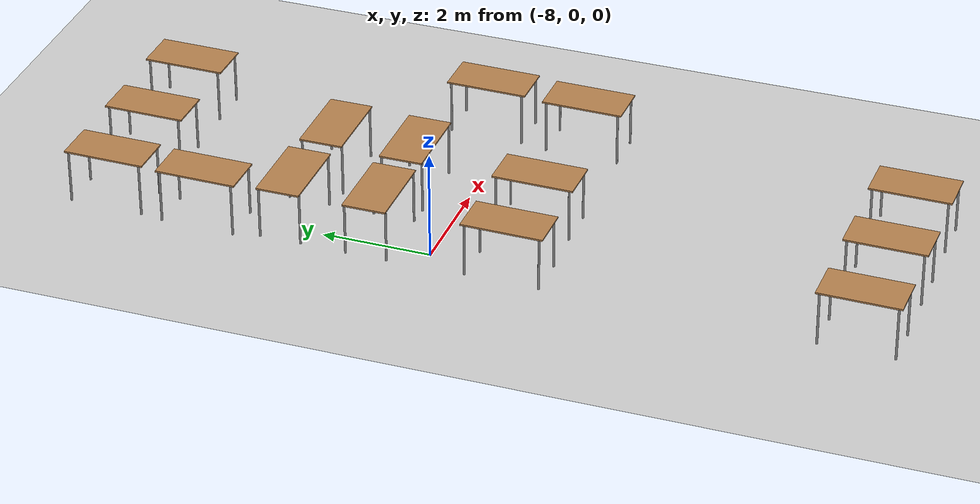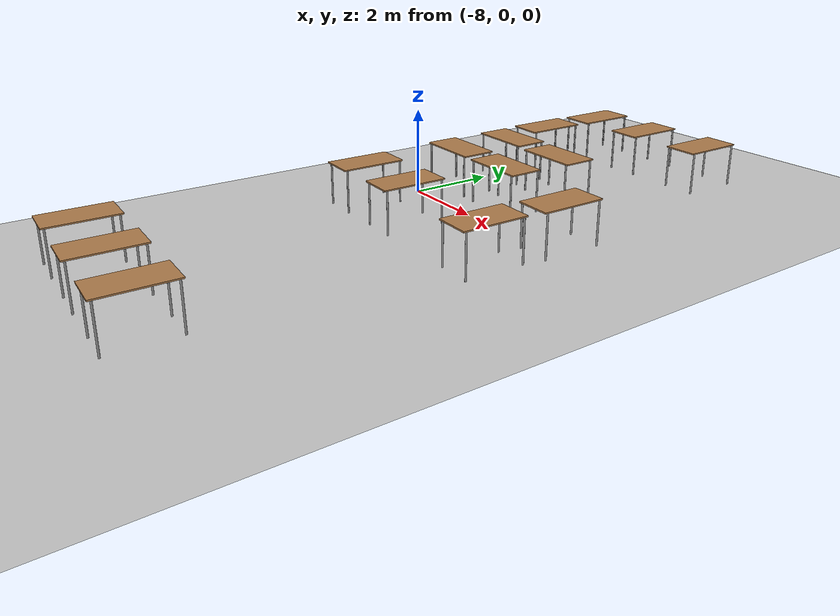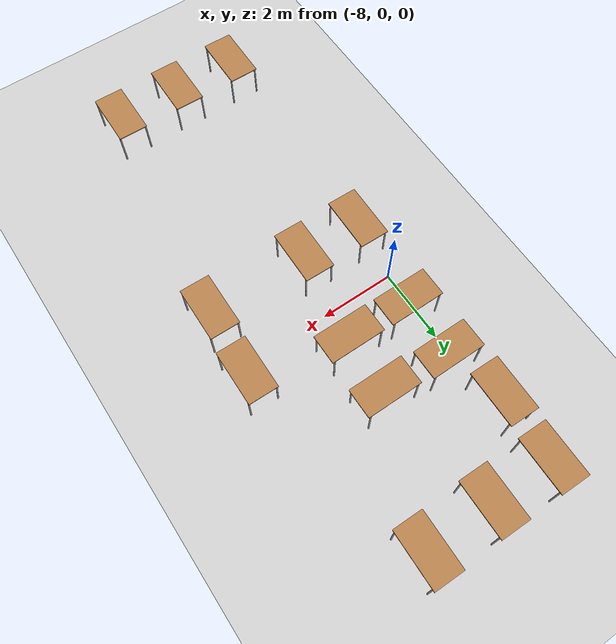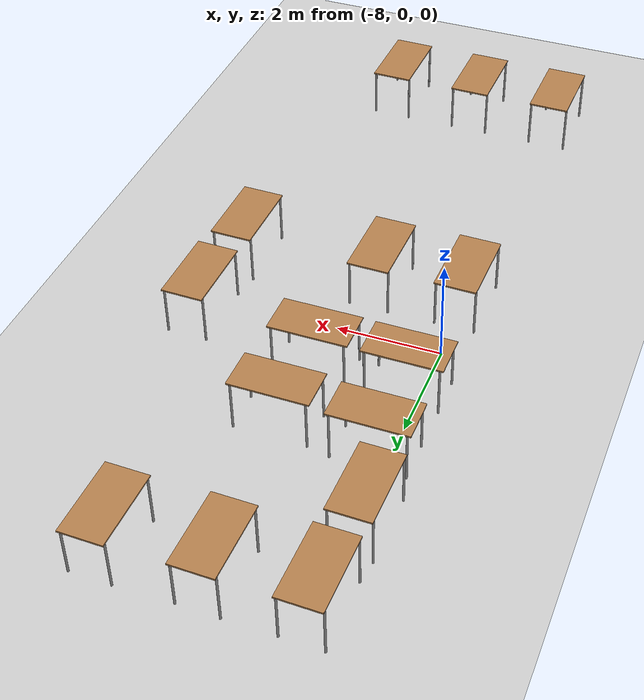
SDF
<sdf version="1.7">
 <world name="default">
  <model name="ground_plane">
   <static>1</static>
   <link name="link">
    <collision name="collision">
     <geometry><plane><normal>0 0 1</normal><size>100 100</size></plane></geometry>
     <surface><friction><ode><mu>100</mu><mu2>50</mu2></ode></friction></surface>
    </collision>
    <visual name="visual">
     <cast_shadows>0</cast_shadows>
     <geometry><plane><normal>0 0 1</normal><size>100 100</size></plane></geometry>
     <material>
      <script><uri>file://media/materials/scripts/gazebo.material</uri><name>Gazebo/Grey</name></script>
     </material>
    </visual>
   </link>
  </model>
  <model name="table_clone_clone">
   <static>1</static>
   <link name="link">
    <collision name="surface">
     <pose>0 0 1 0 -0 0</pose>
     <geometry><box><size>1.5 0.8 0.03</size></box></geometry>
     <surface><friction><ode><mu>0.6</mu><mu2>0.6</mu2></ode></friction></surface>
    </collision>
    <visual name="visual1">
     <pose>0 0 1 0 -0 0</pose>
     <geometry><box><size>1.5 0.8 0.03</size></box></geometry>
     <material>
      <script><uri>file://media/materials/scripts/gazebo.material</uri><name>Gazebo/Wood</name></script>
     </material>
    </visual>
    <collision name="front_left_leg">
     <pose>0.68 0.38 0.5 0 -0 0</pose>
     <geometry><cylinder><radius>0.02</radius><length>1</length></cylinder></geometry>
    </collision>
    <visual name="front_left_leg">
     <pose>0.68 0.38 0.5 0 -0 0</pose>
     <geometry><cylinder><radius>0.02</radius><length>1</length></cylinder></geometry>
     <material>
      <script><uri>file://media/materials/scripts/gazebo.material</uri><name>Gazebo/Grey</name></script>
     </material>
    </visual>
    <collision name="front_right_leg">
     <pose>0.68 -0.38 0.5 0 -0 0</pose>
     <geometry><cylinder><radius>0.02</radius><length>1</length></cylinder></geometry>
    </collision>
    <visual name="front_right_leg">
     <pose>0.68 -0.38 0.5 0 -0 0</pose>
     <geometry><cylinder><radius>0.02</radius><length>1</length></cylinder></geometry>
     <material>
      <script><uri>file://media/materials/scripts/gazebo.material</uri><name>Gazebo/Grey</name></script>
     </material>
    </visual>
    <collision name="back_right_leg">
     <pose>-0.68 -0.38 0.5 0 -0 0</pose>
     <geometry><cylinder><radius>0.02</radius><length>1</length></cylinder></geometry>
    </collision>
    <visual name="back_right_leg">
     <pose>-0.68 -0.38 0.5 0 -0 0</pose>
     <geometry><cylinder><radius>0.02</radius><length>1</length></cylinder></geometry>
     <material>
      <script><uri>file://media/materials/scripts/gazebo.material</uri><name>Gazebo/Grey</name></script>
     </material>
    </visual>
    <collision name="back_left_leg">
     <pose>-0.68 0.38 0.5 0 -0 0</pose>
     <geometry><cylinder><radius>0.02</radius><length>1</length></cylinder></geometry>
    </collision>
    <visual name="back_left_leg">
     <pose>-0.68 0.38 0.5 0 -0 0</pose>
     <geometry><cylinder><radius>0.02</radius><length>1</length></cylinder></geometry>
     <material>
      <script><uri>file://media/materials/scripts/gazebo.material</uri><name>Gazebo/Grey</name></script>
     </material>
    </visual>
   </link>
   <pose>-8.05663 -7.7168 0 0 0 -1.58514</pose>
  </model>
  <model name="table_clone_clone_0">
   <static>1</static>
   <link name="link">
    <collision name="surface">
     <pose>0 0 1 0 -0 0</pose>
     <geometry><box><size>1.5 0.8 0.03</size></box></geometry>
     <surface><friction><ode><mu>0.6</mu><mu2>0.6</mu2></ode></friction></surface>
    </collision>
    <visual name="visual1">
     <pose>0 0 1 0 -0 0</pose>
     <geometry><box><size>1.5 0.8 0.03</size></box></geometry>
     <material>
      <script><uri>file://media/materials/scripts/gazebo.material</uri><name>Gazebo/Wood</name></script>
     </material>
    </visual>
    <collision name="front_left_leg">
     <pose>0.68 0.38 0.5 0 -0 0</pose>
     <geometry><cylinder><radius>0.02</radius><length>1</length></cylinder></geometry>
    </collision>
    <visual name="front_left_leg">
     <pose>0.68 0.38 0.5 0 -0 0</pose>
     <geometry><cylinder><radius>0.02</radius><length>1</length></cylinder></geometry>
     <material>
      <script><uri>file://media/materials/scripts/gazebo.material</uri><name>Gazebo/Grey</name></script>
     </material>
    </visual>
    <collision name="front_right_leg">
     <pose>0.68 -0.38 0.5 0 -0 0</pose>
     <geometry><cylinder><radius>0.02</radius><length>1</length></cylinder></geometry>
    </collision>
    <visual name="front_right_leg">
     <pose>0.68 -0.38 0.5 0 -0 0</pose>
     <geometry><cylinder><radius>0.02</radius><length>1</length></cylinder></geometry>
     <material>
      <script><uri>file://media/materials/scripts/gazebo.material</uri><name>Gazebo/Grey</name></script>
     </material>
    </visual>
    <collision name="back_right_leg">
     <pose>-0.68 -0.38 0.5 0 -0 0</pose>
     <geometry><cylinder><radius>0.02</radius><length>1</length></cylinder></geometry>
    </collision>
    <visual name="back_right_leg">
     <pose>-0.68 -0.38 0.5 0 -0 0</pose>
     <geometry><cylinder><radius>0.02</radius><length>1</length></cylinder></geometry>
     <material>
      <script><uri>file://media/materials/scripts/gazebo.material</uri><name>Gazebo/Grey</name></script>
     </material>
    </visual>
    <collision name="back_left_leg">
     <pose>-0.68 0.38 0.5 0 -0 0</pose>
     <geometry><cylinder><radius>0.02</radius><length>1</length></cylinder></geometry>
    </collision>
    <visual name="back_left_leg">
     <pose>-0.68 0.38 0.5 0 -0 0</pose>
     <geometry><cylinder><radius>0.02</radius><length>1</length></cylinder></geometry>
     <material>
      <script><uri>file://media/materials/scripts/gazebo.material</uri><name>Gazebo/Grey</name></script>
     </material>
    </visual>
   </link>
   <pose>-6.31965 -7.72548 0 0 0 -1.58514</pose>
  </model>
  <model name="table_clone_clone_1">
   <static>1</static>
   <link name="link">
    <collision name="surface">
     <pose>0 0 1 0 -0 0</pose>
     <geometry><box><size>1.5 0.8 0.03</size></box></geometry>
     <surface><friction><ode><mu>0.6</mu><mu2>0.6</mu2></ode></friction></surface>
    </collision>
    <visual name="visual1">
     <pose>0 0 1 0 -0 0</pose>
     <geometry><box><size>1.5 0.8 0.03</size></box></geometry>
     <material>
      <script><uri>file://media/materials/scripts/gazebo.material</uri><name>Gazebo/Wood</name></script>
     </material>
    </visual>
    <collision name="front_left_leg">
     <pose>0.68 0.38 0.5 0 -0 0</pose>
     <geometry><cylinder><radius>0.02</radius><length>1</length></cylinder></geometry>
    </collision>
    <visual name="front_left_leg">
     <pose>0.68 0.38 0.5 0 -0 0</pose>
     <geometry><cylinder><radius>0.02</radius><length>1</length></cylinder></geometry>
     <material>
      <script><uri>file://media/materials/scripts/gazebo.material</uri><name>Gazebo/Grey</name></script>
     </material>
    </visual>
    <collision name="front_right_leg">
     <pose>0.68 -0.38 0.5 0 -0 0</pose>
     <geometry><cylinder><radius>0.02</radius><length>1</length></cylinder></geometry>
    </collision>
    <visual name="front_right_leg">
     <pose>0.68 -0.38 0.5 0 -0 0</pose>
     <geometry><cylinder><radius>0.02</radius><length>1</length></cylinder></geometry>
     <material>
      <script><uri>file://media/materials/scripts/gazebo.material</uri><name>Gazebo/Grey</name></script>
     </material>
    </visual>
    <collision name="back_right_leg">
     <pose>-0.68 -0.38 0.5 0 -0 0</pose>
     <geometry><cylinder><radius>0.02</radius><length>1</length></cylinder></geometry>
    </collision>
    <visual name="back_right_leg">
     <pose>-0.68 -0.38 0.5 0 -0 0</pose>
     <geometry><cylinder><radius>0.02</radius><length>1</length></cylinder></geometry>
     <material>
      <script><uri>file://media/materials/scripts/gazebo.material</uri><name>Gazebo/Grey</name></script>
     </material>
    </visual>
    <collision name="back_left_leg">
     <pose>-0.68 0.38 0.5 0 -0 0</pose>
     <geometry><cylinder><radius>0.02</radius><length>1</length></cylinder></geometry>
    </collision>
    <visual name="back_left_leg">
     <pose>-0.68 0.38 0.5 0 -0 0</pose>
     <geometry><cylinder><radius>0.02</radius><length>1</length></cylinder></geometry>
     <material>
      <script><uri>file://media/materials/scripts/gazebo.material</uri><name>Gazebo/Grey</name></script>
     </material>
    </visual>
   </link>
   <pose>-4.56471 -7.7217 0 0 0 -1.58514</pose>
  </model>
  <model name="table_clone_clone_0_clone">
   <static>1</static>
   <link name="link">
    <collision name="surface">
     <pose>0 0 1 0 -0 0</pose>
     <geometry><box><size>1.5 0.8 0.03</size></box></geometry>
     <surface><friction><ode><mu>0.6</mu><mu2>0.6</mu2></ode></friction></surface>
    </collision>
    <visual name="visual1">
     <pose>0 0 1 0 -0 0</pose>
     <geometry><box><size>1.5 0.8 0.03</size></box></geometry>
     <material>
      <script><uri>file://media/materials/scripts/gazebo.material</uri><name>Gazebo/Wood</name></script>
     </material>
    </visual>
    <collision name="front_left_leg">
     <pose>0.68 0.38 0.5 0 -0 0</pose>
     <geometry><cylinder><radius>0.02</radius><length>1</length></cylinder></geometry>
    </collision>
    <visual name="front_left_leg">
     <pose>0.68 0.38 0.5 0 -0 0</pose>
     <geometry><cylinder><radius>0.02</radius><length>1</length></cylinder></geometry>
     <material>
      <script><uri>file://media/materials/scripts/gazebo.material</uri><name>Gazebo/Grey</name></script>
     </material>
    </visual>
    <collision name="front_right_leg">
     <pose>0.68 -0.38 0.5 0 -0 0</pose>
     <geometry><cylinder><radius>0.02</radius><length>1</length></cylinder></geometry>
    </collision>
    <visual name="front_right_leg">
     <pose>0.68 -0.38 0.5 0 -0 0</pose>
     <geometry><cylinder><radius>0.02</radius><length>1</length></cylinder></geometry>
     <material>
      <script><uri>file://media/materials/scripts/gazebo.material</uri><name>Gazebo/Grey</name></script>
     </material>
    </visual>
    <collision name="back_right_leg">
     <pose>-0.68 -0.38 0.5 0 -0 0</pose>
     <geometry><cylinder><radius>0.02</radius><length>1</length></cylinder></geometry>
    </collision>
    <visual name="back_right_leg">
     <pose>-0.68 -0.38 0.5 0 -0 0</pose>
     <geometry><cylinder><radius>0.02</radius><length>1</length></cylinder></geometry>
     <material>
      <script><uri>file://media/materials/scripts/gazebo.material</uri><name>Gazebo/Grey</name></script>
     </material>
    </visual>
    <collision name="back_left_leg">
     <pose>-0.68 0.38 0.5 0 -0 0</pose>
     <geometry><cylinder><radius>0.02</radius><length>1</length></cylinder></geometry>
    </collision>
    <visual name="back_left_leg">
     <pose>-0.68 0.38 0.5 0 -0 0</pose>
     <geometry><cylinder><radius>0.02</radius><length>1</length></cylinder></geometry>
     <material>
      <script><uri>file://media/materials/scripts/gazebo.material</uri><name>Gazebo/Grey</name></script>
     </material>
    </visual>
   </link>
   <pose>-8.00927 -1.44492 0 0 0 -1.58514</pose>
  </model>
  <model name="table_clone_clone_0_clone_0">
   <static>1</static>
   <link name="link">
    <collision name="surface">
     <pose>0 0 1 0 -0 0</pose>
     <geometry><box><size>1.5 0.8 0.03</size></box></geometry>
     <surface><friction><ode><mu>0.6</mu><mu2>0.6</mu2></ode></friction></surface>
    </collision>
    <visual name="visual1">
     <pose>0 0 1 0 -0 0</pose>
     <geometry><box><size>1.5 0.8 0.03</size></box></geometry>
     <material>
      <script><uri>file://media/materials/scripts/gazebo.material</uri><name>Gazebo/Wood</name></script>
     </material>
    </visual>
    <collision name="front_left_leg">
     <pose>0.68 0.38 0.5 0 -0 0</pose>
     <geometry><cylinder><radius>0.02</radius><length>1</length></cylinder></geometry>
    </collision>
    <visual name="front_left_leg">
     <pose>0.68 0.38 0.5 0 -0 0</pose>
     <geometry><cylinder><radius>0.02</radius><length>1</length></cylinder></geometry>
     <material>
      <script><uri>file://media/materials/scripts/gazebo.material</uri><name>Gazebo/Grey</name></script>
     </material>
    </visual>
    <collision name="front_right_leg">
     <pose>0.68 -0.38 0.5 0 -0 0</pose>
     <geometry><cylinder><radius>0.02</radius><length>1</length></cylinder></geometry>
    </collision>
    <visual name="front_right_leg">
     <pose>0.68 -0.38 0.5 0 -0 0</pose>
     <geometry><cylinder><radius>0.02</radius><length>1</length></cylinder></geometry>
     <material>
      <script><uri>file://media/materials/scripts/gazebo.material</uri><name>Gazebo/Grey</name></script>
     </material>
    </visual>
    <collision name="back_right_leg">
     <pose>-0.68 -0.38 0.5 0 -0 0</pose>
     <geometry><cylinder><radius>0.02</radius><length>1</length></cylinder></geometry>
    </collision>
    <visual name="back_right_leg">
     <pose>-0.68 -0.38 0.5 0 -0 0</pose>
     <geometry><cylinder><radius>0.02</radius><length>1</length></cylinder></geometry>
     <material>
      <script><uri>file://media/materials/scripts/gazebo.material</uri><name>Gazebo/Grey</name></script>
     </material>
    </visual>
    <collision name="back_left_leg">
     <pose>-0.68 0.38 0.5 0 -0 0</pose>
     <geometry><cylinder><radius>0.02</radius><length>1</length></cylinder></geometry>
    </collision>
    <visual name="back_left_leg">
     <pose>-0.68 0.38 0.5 0 -0 0</pose>
     <geometry><cylinder><radius>0.02</radius><length>1</length></cylinder></geometry>
     <material>
      <script><uri>file://media/materials/scripts/gazebo.material</uri><name>Gazebo/Grey</name></script>
     </material>
    </visual>
   </link>
   <pose>-6.34475 -1.42979 0 0 0 -1.58514</pose>
  </model>
  <model name="table_clone_clone_0_clone_1">
   <static>1</static>
   <link name="link">
    <collision name="surface">
     <pose>0 0 1 0 -0 0</pose>
     <geometry><box><size>1.5 0.8 0.03</size></box></geometry>
     <surface><friction><ode><mu>0.6</mu><mu2>0.6</mu2></ode></friction></surface>
    </collision>
    <visual name="visual1">
     <pose>0 0 1 0 -0 0</pose>
     <geometry><box><size>1.5 0.8 0.03</size></box></geometry>
     <material>
      <script><uri>file://media/materials/scripts/gazebo.material</uri><name>Gazebo/Wood</name></script>
     </material>
    </visual>
    <collision name="front_left_leg">
     <pose>0.68 0.38 0.5 0 -0 0</pose>
     <geometry><cylinder><radius>0.02</radius><length>1</length></cylinder></geometry>
    </collision>
    <visual name="front_left_leg">
     <pose>0.68 0.38 0.5 0 -0 0</pose>
     <geometry><cylinder><radius>0.02</radius><length>1</length></cylinder></geometry>
     <material>
      <script><uri>file://media/materials/scripts/gazebo.material</uri><name>Gazebo/Grey</name></script>
     </material>
    </visual>
    <collision name="front_right_leg">
     <pose>0.68 -0.38 0.5 0 -0 0</pose>
     <geometry><cylinder><radius>0.02</radius><length>1</length></cylinder></geometry>
    </collision>
    <visual name="front_right_leg">
     <pose>0.68 -0.38 0.5 0 -0 0</pose>
     <geometry><cylinder><radius>0.02</radius><length>1</length></cylinder></geometry>
     <material>
      <script><uri>file://media/materials/scripts/gazebo.material</uri><name>Gazebo/Grey</name></script>
     </material>
    </visual>
    <collision name="back_right_leg">
     <pose>-0.68 -0.38 0.5 0 -0 0</pose>
     <geometry><cylinder><radius>0.02</radius><length>1</length></cylinder></geometry>
    </collision>
    <visual name="back_right_leg">
     <pose>-0.68 -0.38 0.5 0 -0 0</pose>
     <geometry><cylinder><radius>0.02</radius><length>1</length></cylinder></geometry>
     <material>
      <script><uri>file://media/materials/scripts/gazebo.material</uri><name>Gazebo/Grey</name></script>
     </material>
    </visual>
    <collision name="back_left_leg">
     <pose>-0.68 0.38 0.5 0 -0 0</pose>
     <geometry><cylinder><radius>0.02</radius><length>1</length></cylinder></geometry>
    </collision>
    <visual name="back_left_leg">
     <pose>-0.68 0.38 0.5 0 -0 0</pose>
     <geometry><cylinder><radius>0.02</radius><length>1</length></cylinder></geometry>
     <material>
      <script><uri>file://media/materials/scripts/gazebo.material</uri><name>Gazebo/Grey</name></script>
     </material>
    </visual>
   </link>
   <pose>-3.6146 -1.43026 0 0 0 -1.58514</pose>
  </model>
  <model name="table_clone_clone_0_clone_4">
   <static>1</static>
   <link name="link">
    <collision name="surface">
     <pose>0 0 1 0 -0 0</pose>
     <geometry><box><size>1.5 0.8 0.03</size></box></geometry>
     <surface><friction><ode><mu>0.6</mu><mu2>0.6</mu2></ode></friction></surface>
    </collision>
    <visual name="visual1">
     <pose>0 0 1 0 -0 0</pose>
     <geometry><box><size>1.5 0.8 0.03</size></box></geometry>
     <material>
      <script><uri>file://media/materials/scripts/gazebo.material</uri><name>Gazebo/Wood</name></script>
     </material>
    </visual>
    <collision name="front_left_leg">
     <pose>0.68 0.38 0.5 0 -0 0</pose>
     <geometry><cylinder><radius>0.02</radius><length>1</length></cylinder></geometry>
    </collision>
    <visual name="front_left_leg">
     <pose>0.68 0.38 0.5 0 -0 0</pose>
     <geometry><cylinder><radius>0.02</radius><length>1</length></cylinder></geometry>
     <material>
      <script><uri>file://media/materials/scripts/gazebo.material</uri><name>Gazebo/Grey</name></script>
     </material>
    </visual>
    <collision name="front_right_leg">
     <pose>0.68 -0.38 0.5 0 -0 0</pose>
     <geometry><cylinder><radius>0.02</radius><length>1</length></cylinder></geometry>
    </collision>
    <visual name="front_right_leg">
     <pose>0.68 -0.38 0.5 0 -0 0</pose>
     <geometry><cylinder><radius>0.02</radius><length>1</length></cylinder></geometry>
     <material>
      <script><uri>file://media/materials/scripts/gazebo.material</uri><name>Gazebo/Grey</name></script>
     </material>
    </visual>
    <collision name="back_right_leg">
     <pose>-0.68 -0.38 0.5 0 -0 0</pose>
     <geometry><cylinder><radius>0.02</radius><length>1</length></cylinder></geometry>
    </collision>
    <visual name="back_right_leg">
     <pose>-0.68 -0.38 0.5 0 -0 0</pose>
     <geometry><cylinder><radius>0.02</radius><length>1</length></cylinder></geometry>
     <material>
      <script><uri>file://media/materials/scripts/gazebo.material</uri><name>Gazebo/Grey</name></script>
     </material>
    </visual>
    <collision name="back_left_leg">
     <pose>-0.68 0.38 0.5 0 -0 0</pose>
     <geometry><cylinder><radius>0.02</radius><length>1</length></cylinder></geometry>
    </collision>
    <visual name="back_left_leg">
     <pose>-0.68 0.38 0.5 0 -0 0</pose>
     <geometry><cylinder><radius>0.02</radius><length>1</length></cylinder></geometry>
     <material>
      <script><uri>file://media/materials/scripts/gazebo.material</uri><name>Gazebo/Grey</name></script>
     </material>
    </visual>
   </link>
   <pose>-3.50789 0.433256 0 0 0 -1.58514</pose>
  </model>
  <model name="table_0_clone">
   <static>1</static>
   <link name="link">
    <collision name="surface">
     <pose>0 0 1 0 -0 0</pose>
     <geometry><box><size>1.5 0.8 0.03</size></box></geometry>
     <surface><friction><ode><mu>0.6</mu><mu2>0.6</mu2></ode></friction></surface>
    </collision>
    <visual name="visual1">
     <pose>0 0 1 0 -0 0</pose>
     <geometry><box><size>1.5 0.8 0.03</size></box></geometry>
     <material>
      <script><uri>file://media/materials/scripts/gazebo.material</uri><name>Gazebo/Wood</name></script>
     </material>
    </visual>
    <collision name="front_left_leg">
     <pose>0.68 0.38 0.5 0 -0 0</pose>
     <geometry><cylinder><radius>0.02</radius><length>1</length></cylinder></geometry>
    </collision>
    <visual name="front_left_leg">
     <pose>0.68 0.38 0.5 0 -0 0</pose>
     <geometry><cylinder><radius>0.02</radius><length>1</length></cylinder></geometry>
     <material>
      <script><uri>file://media/materials/scripts/gazebo.material</uri><name>Gazebo/Grey</name></script>
     </material>
    </visual>
    <collision name="front_right_leg">
     <pose>0.68 -0.38 0.5 0 -0 0</pose>
     <geometry><cylinder><radius>0.02</radius><length>1</length></cylinder></geometry>
    </collision>
    <visual name="front_right_leg">
     <pose>0.68 -0.38 0.5 0 -0 0</pose>
     <geometry><cylinder><radius>0.02</radius><length>1</length></cylinder></geometry>
     <material>
      <script><uri>file://media/materials/scripts/gazebo.material</uri><name>Gazebo/Grey</name></script>
     </material>
    </visual>
    <collision name="back_right_leg">
     <pose>-0.68 -0.38 0.5 0 -0 0</pose>
     <geometry><cylinder><radius>0.02</radius><length>1</length></cylinder></geometry>
    </collision>
    <visual name="back_right_leg">
     <pose>-0.68 -0.38 0.5 0 -0 0</pose>
     <geometry><cylinder><radius>0.02</radius><length>1</length></cylinder></geometry>
     <material>
      <script><uri>file://media/materials/scripts/gazebo.material</uri><name>Gazebo/Grey</name></script>
     </material>
    </visual>
    <collision name="back_left_leg">
     <pose>-0.68 0.38 0.5 0 -0 0</pose>
     <geometry><cylinder><radius>0.02</radius><length>1</length></cylinder></geometry>
    </collision>
    <visual name="back_left_leg">
     <pose>-0.68 0.38 0.5 0 -0 0</pose>
     <geometry><cylinder><radius>0.02</radius><length>1</length></cylinder></geometry>
     <material>
      <script><uri>file://media/materials/scripts/gazebo.material</uri><name>Gazebo/Grey</name></script>
     </material>
    </visual>
   </link>
   <pose>-7.71943 2.64999 0 0 -0 0</pose>
  </model>
  <model name="table_0_clone_0">
   <static>1</static>
   <link name="link">
    <collision name="surface">
     <pose>0 0 1 0 -0 0</pose>
     <geometry><box><size>1.5 0.8 0.03</size></box></geometry>
     <surface><friction><ode><mu>0.6</mu><mu2>0.6</mu2></ode></friction></surface>
    </collision>
    <visual name="visual1">
     <pose>0 0 1 0 -0 0</pose>
     <geometry><box><size>1.5 0.8 0.03</size></box></geometry>
     <material>
      <script><uri>file://media/materials/scripts/gazebo.material</uri><name>Gazebo/Wood</name></script>
     </material>
    </visual>
    <collision name="front_left_leg">
     <pose>0.68 0.38 0.5 0 -0 0</pose>
     <geometry><cylinder><radius>0.02</radius><length>1</length></cylinder></geometry>
    </collision>
    <visual name="front_left_leg">
     <pose>0.68 0.38 0.5 0 -0 0</pose>
     <geometry><cylinder><radius>0.02</radius><length>1</length></cylinder></geometry>
     <material>
      <script><uri>file://media/materials/scripts/gazebo.material</uri><name>Gazebo/Grey</name></script>
     </material>
    </visual>
    <collision name="front_right_leg">
     <pose>0.68 -0.38 0.5 0 -0 0</pose>
     <geometry><cylinder><radius>0.02</radius><length>1</length></cylinder></geometry>
    </collision>
    <visual name="front_right_leg">
     <pose>0.68 -0.38 0.5 0 -0 0</pose>
     <geometry><cylinder><radius>0.02</radius><length>1</length></cylinder></geometry>
     <material>
      <script><uri>file://media/materials/scripts/gazebo.material</uri><name>Gazebo/Grey</name></script>
     </material>
    </visual>
    <collision name="back_right_leg">
     <pose>-0.68 -0.38 0.5 0 -0 0</pose>
     <geometry><cylinder><radius>0.02</radius><length>1</length></cylinder></geometry>
    </collision>
    <visual name="back_right_leg">
     <pose>-0.68 -0.38 0.5 0 -0 0</pose>
     <geometry><cylinder><radius>0.02</radius><length>1</length></cylinder></geometry>
     <material>
      <script><uri>file://media/materials/scripts/gazebo.material</uri><name>Gazebo/Grey</name></script>
     </material>
    </visual>
    <collision name="back_left_leg">
     <pose>-0.68 0.38 0.5 0 -0 0</pose>
     <geometry><cylinder><radius>0.02</radius><length>1</length></cylinder></geometry>
    </collision>
    <visual name="back_left_leg">
     <pose>-0.68 0.38 0.5 0 -0 0</pose>
     <geometry><cylinder><radius>0.02</radius><length>1</length></cylinder></geometry>
     <material>
      <script><uri>file://media/materials/scripts/gazebo.material</uri><name>Gazebo/Grey</name></script>
     </material>
    </visual>
   </link>
   <pose>-7.7357 1.04041 0 0 -0 0</pose>
  </model>
  <model name="table_0_clone_1">
   <static>1</static>
   <link name="link">
    <collision name="surface">
     <pose>0 0 1 0 -0 0</pose>
     <geometry><box><size>1.5 0.8 0.03</size></box></geometry>
     <surface><friction><ode><mu>0.6</mu><mu2>0.6</mu2></ode></friction></surface>
    </collision>
    <visual name="visual1">
     <pose>0 0 1 0 -0 0</pose>
     <geometry><box><size>1.5 0.8 0.03</size></box></geometry>
     <material>
      <script><uri>file://media/materials/scripts/gazebo.material</uri><name>Gazebo/Wood</name></script>
     </material>
    </visual>
    <collision name="front_left_leg">
     <pose>0.68 0.38 0.5 0 -0 0</pose>
     <geometry><cylinder><radius>0.02</radius><length>1</length></cylinder></geometry>
    </collision>
    <visual name="front_left_leg">
     <pose>0.68 0.38 0.5 0 -0 0</pose>
     <geometry><cylinder><radius>0.02</radius><length>1</length></cylinder></geometry>
     <material>
      <script><uri>file://media/materials/scripts/gazebo.material</uri><name>Gazebo/Grey</name></script>
     </material>
    </visual>
    <collision name="front_right_leg">
     <pose>0.68 -0.38 0.5 0 -0 0</pose>
     <geometry><cylinder><radius>0.02</radius><length>1</length></cylinder></geometry>
    </collision>
    <visual name="front_right_leg">
     <pose>0.68 -0.38 0.5 0 -0 0</pose>
     <geometry><cylinder><radius>0.02</radius><length>1</length></cylinder></geometry>
     <material>
      <script><uri>file://media/materials/scripts/gazebo.material</uri><name>Gazebo/Grey</name></script>
     </material>
    </visual>
    <collision name="back_right_leg">
     <pose>-0.68 -0.38 0.5 0 -0 0</pose>
     <geometry><cylinder><radius>0.02</radius><length>1</length></cylinder></geometry>
    </collision>
    <visual name="back_right_leg">
     <pose>-0.68 -0.38 0.5 0 -0 0</pose>
     <geometry><cylinder><radius>0.02</radius><length>1</length></cylinder></geometry>
     <material>
      <script><uri>file://media/materials/scripts/gazebo.material</uri><name>Gazebo/Grey</name></script>
     </material>
    </visual>
    <collision name="back_left_leg">
     <pose>-0.68 0.38 0.5 0 -0 0</pose>
     <geometry><cylinder><radius>0.02</radius><length>1</length></cylinder></geometry>
    </collision>
    <visual name="back_left_leg">
     <pose>-0.68 0.38 0.5 0 -0 0</pose>
     <geometry><cylinder><radius>0.02</radius><length>1</length></cylinder></geometry>
     <material>
      <script><uri>file://media/materials/scripts/gazebo.material</uri><name>Gazebo/Grey</name></script>
     </material>
    </visual>
   </link>
   <pose>-5.92578 2.56277 0 0 -0 0</pose>
  </model>
  <model name="table_0_clone_2">
   <static>1</static>
   <link name="link">
    <collision name="surface">
     <pose>0 0 1 0 -0 0</pose>
     <geometry><box><size>1.5 0.8 0.03</size></box></geometry>
     <surface><friction><ode><mu>0.6</mu><mu2>0.6</mu2></ode></friction></surface>
    </collision>
    <visual name="visual1">
     <pose>0 0 1 0 -0 0</pose>
     <geometry><box><size>1.5 0.8 0.03</size></box></geometry>
     <material>
      <script><uri>file://media/materials/scripts/gazebo.material</uri><name>Gazebo/Wood</name></script>
     </material>
    </visual>
    <collision name="front_left_leg">
     <pose>0.68 0.38 0.5 0 -0 0</pose>
     <geometry><cylinder><radius>0.02</radius><length>1</length></cylinder></geometry>
    </collision>
    <visual name="front_left_leg">
     <pose>0.68 0.38 0.5 0 -0 0</pose>
     <geometry><cylinder><radius>0.02</radius><length>1</length></cylinder></geometry>
     <material>
      <script><uri>file://media/materials/scripts/gazebo.material</uri><name>Gazebo/Grey</name></script>
     </material>
    </visual>
    <collision name="front_right_leg">
     <pose>0.68 -0.38 0.5 0 -0 0</pose>
     <geometry><cylinder><radius>0.02</radius><length>1</length></cylinder></geometry>
    </collision>
    <visual name="front_right_leg">
     <pose>0.68 -0.38 0.5 0 -0 0</pose>
     <geometry><cylinder><radius>0.02</radius><length>1</length></cylinder></geometry>
     <material>
      <script><uri>file://media/materials/scripts/gazebo.material</uri><name>Gazebo/Grey</name></script>
     </material>
    </visual>
    <collision name="back_right_leg">
     <pose>-0.68 -0.38 0.5 0 -0 0</pose>
     <geometry><cylinder><radius>0.02</radius><length>1</length></cylinder></geometry>
    </collision>
    <visual name="back_right_leg">
     <pose>-0.68 -0.38 0.5 0 -0 0</pose>
     <geometry><cylinder><radius>0.02</radius><length>1</length></cylinder></geometry>
     <material>
      <script><uri>file://media/materials/scripts/gazebo.material</uri><name>Gazebo/Grey</name></script>
     </material>
    </visual>
    <collision name="back_left_leg">
     <pose>-0.68 0.38 0.5 0 -0 0</pose>
     <geometry><cylinder><radius>0.02</radius><length>1</length></cylinder></geometry>
    </collision>
    <visual name="back_left_leg">
     <pose>-0.68 0.38 0.5 0 -0 0</pose>
     <geometry><cylinder><radius>0.02</radius><length>1</length></cylinder></geometry>
     <material>
      <script><uri>file://media/materials/scripts/gazebo.material</uri><name>Gazebo/Grey</name></script>
     </material>
    </visual>
   </link>
   <pose>-5.99774 1.02344 0 0 -0 0</pose>
  </model>
  <model name="table_clone_clone_0_clone_3_clone">
   <static>1</static>
   <link name="link">
    <collision name="surface">
     <pose>0 0 1 0 -0 0</pose>
     <geometry><box><size>1.5 0.8 0.03</size></box></geometry>
     <surface><friction><ode><mu>0.6</mu><mu2>0.6</mu2></ode></friction></surface>
    </collision>
    <visual name="visual1">
     <pose>0 0 1 0 -0 0</pose>
     <geometry><box><size>1.5 0.8 0.03</size></box></geometry>
     <material>
      <script><uri>file://media/materials/scripts/gazebo.material</uri><name>Gazebo/Wood</name></script>
     </material>
    </visual>
    <collision name="front_left_leg">
     <pose>0.68 0.38 0.5 0 -0 0</pose>
     <geometry><cylinder><radius>0.02</radius><length>1</length></cylinder></geometry>
    </collision>
    <visual name="front_left_leg">
     <pose>0.68 0.38 0.5 0 -0 0</pose>
     <geometry><cylinder><radius>0.02</radius><length>1</length></cylinder></geometry>
     <material>
      <script><uri>file://media/materials/scripts/gazebo.material</uri><name>Gazebo/Grey</name></script>
     </material>
    </visual>
    <collision name="front_right_leg">
     <pose>0.68 -0.38 0.5 0 -0 0</pose>
     <geometry><cylinder><radius>0.02</radius><length>1</length></cylinder></geometry>
    </collision>
    <visual name="front_right_leg">
     <pose>0.68 -0.38 0.5 0 -0 0</pose>
     <geometry><cylinder><radius>0.02</radius><length>1</length></cylinder></geometry>
     <material>
      <script><uri>file://media/materials/scripts/gazebo.material</uri><name>Gazebo/Grey</name></script>
     </material>
    </visual>
    <collision name="back_right_leg">
     <pose>-0.68 -0.38 0.5 0 -0 0</pose>
     <geometry><cylinder><radius>0.02</radius><length>1</length></cylinder></geometry>
    </collision>
    <visual name="back_right_leg">
     <pose>-0.68 -0.38 0.5 0 -0 0</pose>
     <geometry><cylinder><radius>0.02</radius><length>1</length></cylinder></geometry>
     <material>
      <script><uri>file://media/materials/scripts/gazebo.material</uri><name>Gazebo/Grey</name></script>
     </material>
    </visual>
    <collision name="back_left_leg">
     <pose>-0.68 0.38 0.5 0 -0 0</pose>
     <geometry><cylinder><radius>0.02</radius><length>1</length></cylinder></geometry>
    </collision>
    <visual name="back_left_leg">
     <pose>-0.68 0.38 0.5 0 -0 0</pose>
     <geometry><cylinder><radius>0.02</radius><length>1</length></cylinder></geometry>
     <material>
      <script><uri>file://media/materials/scripts/gazebo.material</uri><name>Gazebo/Grey</name></script>
     </material>
    </visual>
   </link>
   <pose>-8.04709 5.96265 0 0 0 -1.58514</pose>
  </model>
  <model name="table_clone_clone_0_clone_3_clone_0">
   <static>1</static>
   <link name="link">
    <collision name="surface">
     <pose>0 0 1 0 -0 0</pose>
     <geometry><box><size>1.5 0.8 0.03</size></box></geometry>
     <surface><friction><ode><mu>0.6</mu><mu2>0.6</mu2></ode></friction></surface>
    </collision>
    <visual name="visual1">
     <pose>0 0 1 0 -0 0</pose>
     <geometry><box><size>1.5 0.8 0.03</size></box></geometry>
     <material>
      <script><uri>file://media/materials/scripts/gazebo.material</uri><name>Gazebo/Wood</name></script>
     </material>
    </visual>
    <collision name="front_left_leg">
     <pose>0.68 0.38 0.5 0 -0 0</pose>
     <geometry><cylinder><radius>0.02</radius><length>1</length></cylinder></geometry>
    </collision>
    <visual name="front_left_leg">
     <pose>0.68 0.38 0.5 0 -0 0</pose>
     <geometry><cylinder><radius>0.02</radius><length>1</length></cylinder></geometry>
     <material>
      <script><uri>file://media/materials/scripts/gazebo.material</uri><name>Gazebo/Grey</name></script>
     </material>
    </visual>
    <collision name="front_right_leg">
     <pose>0.68 -0.38 0.5 0 -0 0</pose>
     <geometry><cylinder><radius>0.02</radius><length>1</length></cylinder></geometry>
    </collision>
    <visual name="front_right_leg">
     <pose>0.68 -0.38 0.5 0 -0 0</pose>
     <geometry><cylinder><radius>0.02</radius><length>1</length></cylinder></geometry>
     <material>
      <script><uri>file://media/materials/scripts/gazebo.material</uri><name>Gazebo/Grey</name></script>
     </material>
    </visual>
    <collision name="back_right_leg">
     <pose>-0.68 -0.38 0.5 0 -0 0</pose>
     <geometry><cylinder><radius>0.02</radius><length>1</length></cylinder></geometry>
    </collision>
    <visual name="back_right_leg">
     <pose>-0.68 -0.38 0.5 0 -0 0</pose>
     <geometry><cylinder><radius>0.02</radius><length>1</length></cylinder></geometry>
     <material>
      <script><uri>file://media/materials/scripts/gazebo.material</uri><name>Gazebo/Grey</name></script>
     </material>
    </visual>
    <collision name="back_left_leg">
     <pose>-0.68 0.38 0.5 0 -0 0</pose>
     <geometry><cylinder><radius>0.02</radius><length>1</length></cylinder></geometry>
    </collision>
    <visual name="back_left_leg">
     <pose>-0.68 0.38 0.5 0 -0 0</pose>
     <geometry><cylinder><radius>0.02</radius><length>1</length></cylinder></geometry>
     <material>
      <script><uri>file://media/materials/scripts/gazebo.material</uri><name>Gazebo/Grey</name></script>
     </material>
    </visual>
   </link>
   <pose>-6.35609 5.95455 0 0 0 -1.58514</pose>
  </model>
  <model name="table_clone_clone_0_clone_3_clone_1">
   <static>1</static>
   <link name="link">
    <collision name="surface">
     <pose>0 0 1 0 -0 0</pose>
     <geometry><box><size>1.5 0.8 0.03</size></box></geometry>
     <surface><friction><ode><mu>0.6</mu><mu2>0.6</mu2></ode></friction></surface>
    </collision>
    <visual name="visual1">
     <pose>0 0 1 0 -0 0</pose>
     <geometry><box><size>1.5 0.8 0.03</size></box></geometry>
     <material>
      <script><uri>file://media/materials/scripts/gazebo.material</uri><name>Gazebo/Wood</name></script>
     </material>
    </visual>
    <collision name="front_left_leg">
     <pose>0.68 0.38 0.5 0 -0 0</pose>
     <geometry><cylinder><radius>0.02</radius><length>1</length></cylinder></geometry>
    </collision>
    <visual name="front_left_leg">
     <pose>0.68 0.38 0.5 0 -0 0</pose>
     <geometry><cylinder><radius>0.02</radius><length>1</length></cylinder></geometry>
     <material>
      <script><uri>file://media/materials/scripts/gazebo.material</uri><name>Gazebo/Grey</name></script>
     </material>
    </visual>
    <collision name="front_right_leg">
     <pose>0.68 -0.38 0.5 0 -0 0</pose>
     <geometry><cylinder><radius>0.02</radius><length>1</length></cylinder></geometry>
    </collision>
    <visual name="front_right_leg">
     <pose>0.68 -0.38 0.5 0 -0 0</pose>
     <geometry><cylinder><radius>0.02</radius><length>1</length></cylinder></geometry>
     <material>
      <script><uri>file://media/materials/scripts/gazebo.material</uri><name>Gazebo/Grey</name></script>
     </material>
    </visual>
    <collision name="back_right_leg">
     <pose>-0.68 -0.38 0.5 0 -0 0</pose>
     <geometry><cylinder><radius>0.02</radius><length>1</length></cylinder></geometry>
    </collision>
    <visual name="back_right_leg">
     <pose>-0.68 -0.38 0.5 0 -0 0</pose>
     <geometry><cylinder><radius>0.02</radius><length>1</length></cylinder></geometry>
     <material>
      <script><uri>file://media/materials/scripts/gazebo.material</uri><name>Gazebo/Grey</name></script>
     </material>
    </visual>
    <collision name="back_left_leg">
     <pose>-0.68 0.38 0.5 0 -0 0</pose>
     <geometry><cylinder><radius>0.02</radius><length>1</length></cylinder></geometry>
    </collision>
    <visual name="back_left_leg">
     <pose>-0.68 0.38 0.5 0 -0 0</pose>
     <geometry><cylinder><radius>0.02</radius><length>1</length></cylinder></geometry>
     <material>
      <script><uri>file://media/materials/scripts/gazebo.material</uri><name>Gazebo/Grey</name></script>
     </material>
    </visual>
   </link>
   <pose>-4.54354 5.97026 0 0 0 -1.58514</pose>
  </model>
  <model name="table_clone_clone_0_clone_3_clone_2">
   <static>1</static>
   <link name="link">
    <collision name="surface">
     <pose>0 0 1 0 -0 0</pose>
     <geometry><box><size>1.5 0.8 0.03</size></box></geometry>
     <surface><friction><ode><mu>0.6</mu><mu2>0.6</mu2></ode></friction></surface>
    </collision>
    <visual name="visual1">
     <pose>0 0 1 0 -0 0</pose>
     <geometry><box><size>1.5 0.8 0.03</size></box></geometry>
     <material>
      <script><uri>file://media/materials/scripts/gazebo.material</uri><name>Gazebo/Wood</name></script>
     </material>
    </visual>
    <collision name="front_left_leg">
     <pose>0.68 0.38 0.5 0 -0 0</pose>
     <geometry><cylinder><radius>0.02</radius><length>1</length></cylinder></geometry>
    </collision>
    <visual name="front_left_leg">
     <pose>0.68 0.38 0.5 0 -0 0</pose>
     <geometry><cylinder><radius>0.02</radius><length>1</length></cylinder></geometry>
     <material>
      <script><uri>file://media/materials/scripts/gazebo.material</uri><name>Gazebo/Grey</name></script>
     </material>
    </visual>
    <collision name="front_right_leg">
     <pose>0.68 -0.38 0.5 0 -0 0</pose>
     <geometry><cylinder><radius>0.02</radius><length>1</length></cylinder></geometry>
    </collision>
    <visual name="front_right_leg">
     <pose>0.68 -0.38 0.5 0 -0 0</pose>
     <geometry><cylinder><radius>0.02</radius><length>1</length></cylinder></geometry>
     <material>
      <script><uri>file://media/materials/scripts/gazebo.material</uri><name>Gazebo/Grey</name></script>
     </material>
    </visual>
    <collision name="back_right_leg">
     <pose>-0.68 -0.38 0.5 0 -0 0</pose>
     <geometry><cylinder><radius>0.02</radius><length>1</length></cylinder></geometry>
    </collision>
    <visual name="back_right_leg">
     <pose>-0.68 -0.38 0.5 0 -0 0</pose>
     <geometry><cylinder><radius>0.02</radius><length>1</length></cylinder></geometry>
     <material>
      <script><uri>file://media/materials/scripts/gazebo.material</uri><name>Gazebo/Grey</name></script>
     </material>
    </visual>
    <collision name="back_left_leg">
     <pose>-0.68 0.38 0.5 0 -0 0</pose>
     <geometry><cylinder><radius>0.02</radius><length>1</length></cylinder></geometry>
    </collision>
    <visual name="back_left_leg">
     <pose>-0.68 0.38 0.5 0 -0 0</pose>
     <geometry><cylinder><radius>0.02</radius><length>1</length></cylinder></geometry>
     <material>
      <script><uri>file://media/materials/scripts/gazebo.material</uri><name>Gazebo/Grey</name></script>
     </material>
    </visual>
   </link>
   <pose>-8.12525 4.17736 0 0 0 -1.58514</pose>
  </model>
 </world>
</sdf>
